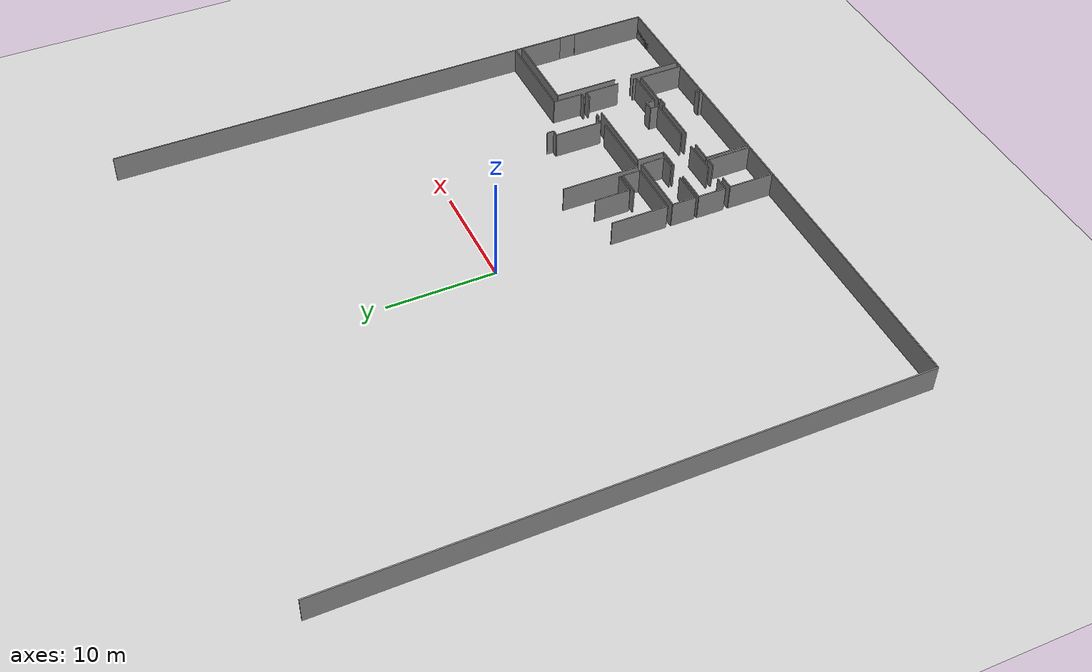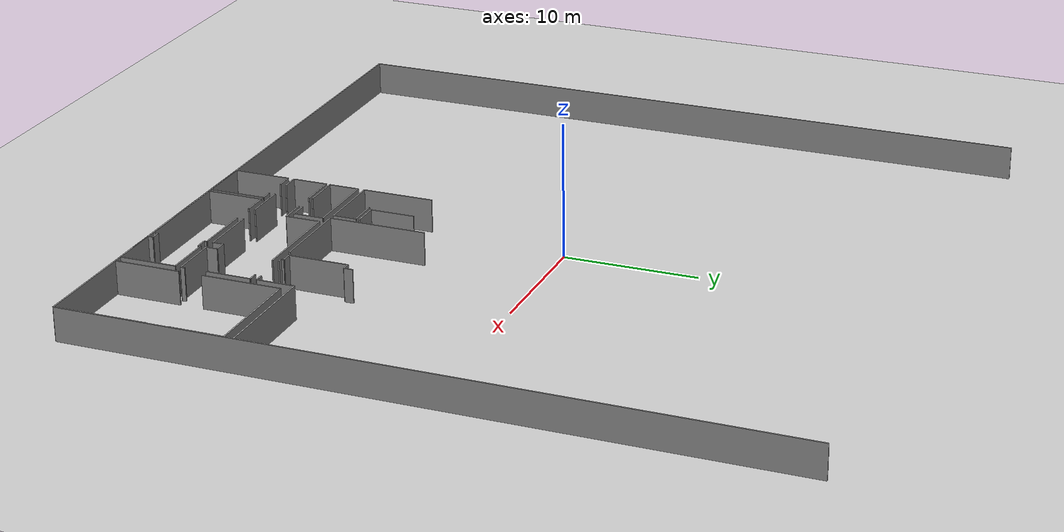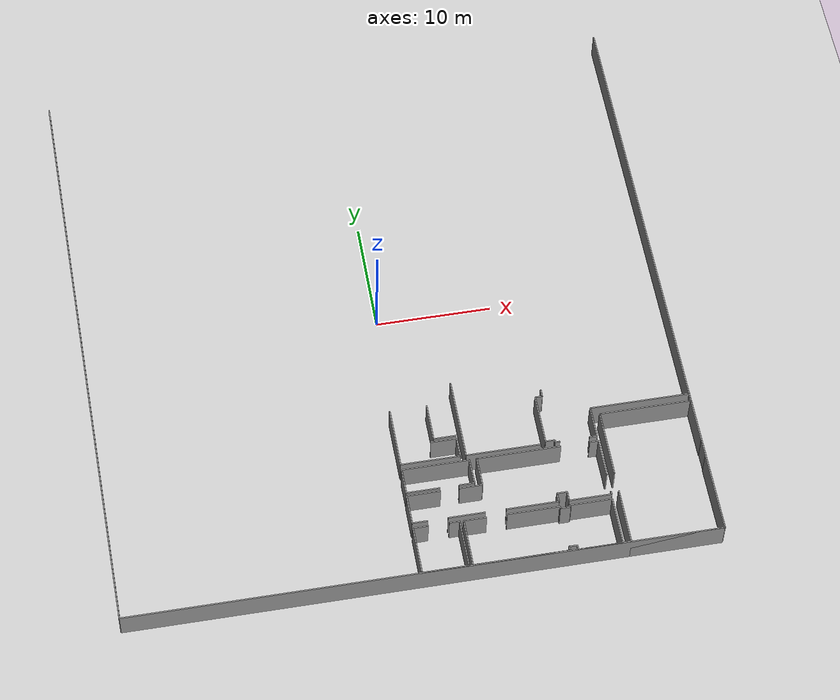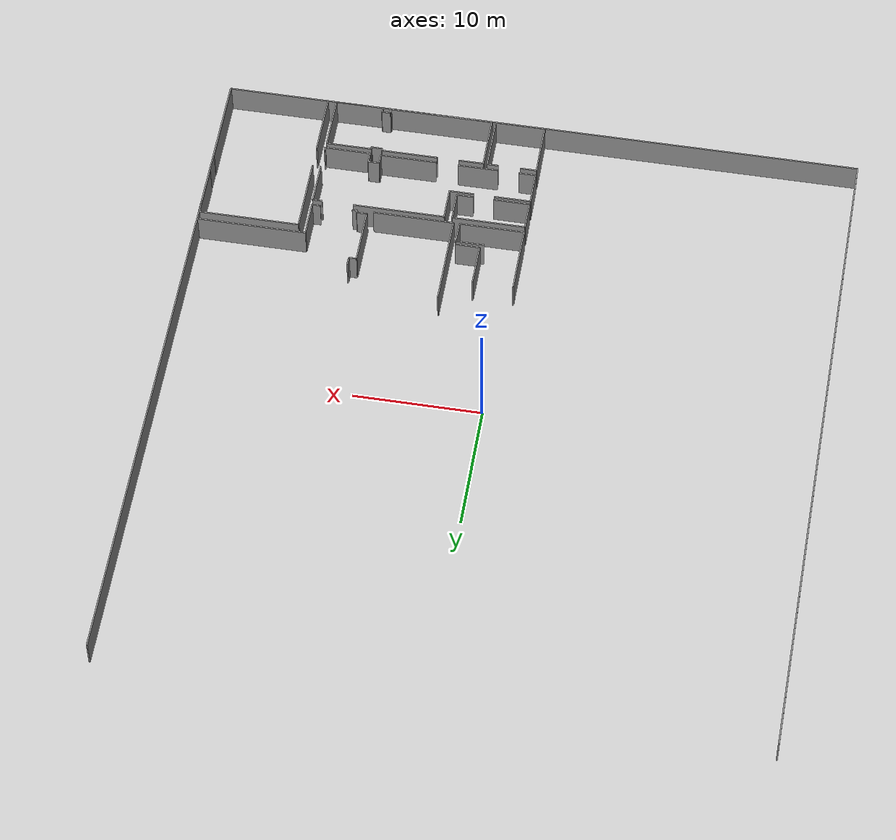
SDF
<sdf version="1.6">
 <world name="default">
  <model name="ground_plane">
   <static>1</static>
   <link name="link">
    <collision name="collision">
     <geometry><plane><normal>0 0 1</normal><size>100 100</size></plane></geometry>
     <surface><friction><ode><mu>100</mu><mu2>50</mu2></ode></friction></surface>
    </collision>
    <visual name="visual">
     <cast_shadows>0</cast_shadows>
     <geometry><plane><normal>0 0 1</normal><size>100 100</size></plane></geometry>
     <material>
      <script><uri>file://media/materials/scripts/gazebo.material</uri><name>Gazebo/Grey</name></script>
     </material>
    </visual>
   </link>
  </model>
  <model name="50025630">
   <static>1</static>
   <link name="Wall_31">
    <collision name="Wall_31_Collision">
     <geometry><box><size>8.59820799228 0.1 2.5</size></box></geometry>
     <pose>4.29910399614 0 1.25 0 0 0</pose>
    </collision>
    <visual name="Wall_31_Visual">
     <pose>4.29910399614 0 1.25 0 0 0</pose>
     <geometry><box><size>8.59820799228 0.1 2.5</size></box></geometry>
     <material>
      <script><uri>file://media/materials/scripts/gazebo.material</uri><name>Gazebo/Grey</name></script>
      <ambient>1 1 1 1</ambient>
     </material>
    </visual>
    <pose>50.4575271309 -39.2135994463 0 0 0 3.14159265359</pose>
   </link>
   <link name="Wall_32">
    <collision name="Wall_32_Collision">
     <geometry><box><size>2.80104396198 0.1 2.5</size></box></geometry>
     <pose>1.40052198099 0 1.25 0 0 0</pose>
    </collision>
    <visual name="Wall_32_Visual">
     <pose>1.40052198099 0 1.25 0 0 0</pose>
     <geometry><box><size>2.80104396198 0.1 2.5</size></box></geometry>
     <material>
      <script><uri>file://media/materials/scripts/gazebo.material</uri><name>Gazebo/Grey</name></script>
      <ambient>1 1 1 1</ambient>
     </material>
    </visual>
    <pose>41.8593191387 -39.2135994463 0 0 0 -1.57079632679</pose>
   </link>
   <link name="Wall_33">
    <collision name="Wall_33_Collision">
     <geometry><box><size>0.660794909733 0.1 2.5</size></box></geometry>
     <pose>0.330397454866 0 1.25 0 0 0</pose>
    </collision>
    <visual name="Wall_33_Visual">
     <pose>0.330397454866 0 1.25 0 0 0</pose>
     <geometry><box><size>0.660794909733 0.1 2.5</size></box></geometry>
     <material>
      <script><uri>file://media/materials/scripts/gazebo.material</uri><name>Gazebo/Grey</name></script>
      <ambient>1 1 1 1</ambient>
     </material>
    </visual>
    <pose>41.8593191387 -42.0146434082 0 0 0 3.14159265359</pose>
   </link>
   <link name="Wall_34">
    <collision name="Wall_34_Collision">
     <geometry><box><size>0.40082043727 0.1 2.5</size></box></geometry>
     <pose>0.200410218635 0 1.25 0 0 0</pose>
    </collision>
    <visual name="Wall_34_Visual">
     <pose>0.200410218635 0 1.25 0 0 0</pose>
     <geometry><box><size>0.40082043727 0.1 2.5</size></box></geometry>
     <material>
      <script><uri>file://media/materials/scripts/gazebo.material</uri><name>Gazebo/Grey</name></script>
      <ambient>1 1 1 1</ambient>
     </material>
    </visual>
    <pose>38.6610108143 -42.0146434082 0 0 0 3.14159265359</pose>
   </link>
   <link name="Wall_35">
    <collision name="Wall_35_Collision">
     <geometry><box><size>0.204093296164 0.1 2.5</size></box></geometry>
     <pose>0.102046648082 0 1.25 0 0 0</pose>
    </collision>
    <visual name="Wall_35_Visual">
     <pose>0.102046648082 0 1.25 0 0 0</pose>
     <geometry><box><size>0.204093296164 0.1 2.5</size></box></geometry>
     <material>
      <script><uri>file://media/materials/scripts/gazebo.material</uri><name>Gazebo/Grey</name></script>
      <ambient>1 1 1 1</ambient>
     </material>
    </visual>
    <pose>38.260190377 -42.0146434082 0 0 0 1.57079632679</pose>
   </link>
   <link name="Wall_36">
    <collision name="Wall_36_Collision">
     <geometry><box><size>0.793385700769 0.1 2.5</size></box></geometry>
     <pose>0.396692850385 0 1.25 0 0 0</pose>
    </collision>
    <visual name="Wall_36_Visual">
     <pose>0.396692850385 0 1.25 0 0 0</pose>
     <geometry><box><size>0.793385700769 0.1 2.5</size></box></geometry>
     <material>
      <script><uri>file://media/materials/scripts/gazebo.material</uri><name>Gazebo/Grey</name></script>
      <ambient>1 1 1 1</ambient>
     </material>
    </visual>
    <pose>38.260190377 -41.8105501121 0 0 0 3.14159265359</pose>
   </link>
   <link name="Wall_37">
    <collision name="Wall_37_Collision">
     <geometry><box><size>4.43163128584 0.1 2.5</size></box></geometry>
     <pose>2.21581564292 0 1.25 0 0 0</pose>
    </collision>
    <visual name="Wall_37_Visual">
     <pose>2.21581564292 0 1.25 0 0 0</pose>
     <geometry><box><size>4.43163128584 0.1 2.5</size></box></geometry>
     <material>
      <script><uri>file://media/materials/scripts/gazebo.material</uri><name>Gazebo/Grey</name></script>
      <ambient>1 1 1 1</ambient>
     </material>
    </visual>
    <pose>37.4668046762 -41.8105501121 0 0 0 1.57079632679</pose>
   </link>
   <link name="Wall_38">
    <collision name="Wall_38_Collision">
     <geometry><box><size>0.608215802943 0.1 2.5</size></box></geometry>
     <pose>0.304107901471 0 1.25 0 0 0</pose>
    </collision>
    <visual name="Wall_38_Visual">
     <pose>0.304107901471 0 1.25 0 0 0</pose>
     <geometry><box><size>0.608215802943 0.1 2.5</size></box></geometry>
     <material>
      <script><uri>file://media/materials/scripts/gazebo.material</uri><name>Gazebo/Grey</name></script>
      <ambient>1 1 1 1</ambient>
     </material>
    </visual>
    <pose>37.4668046762 -37.3789188262 0 0 0 0.0</pose>
   </link>
   <link name="Wall_39">
    <collision name="Wall_39_Collision">
     <geometry><box><size>0.654063768042 0.1 2.5</size></box></geometry>
     <pose>0.327031884021 0 1.25 0 0 0</pose>
    </collision>
    <visual name="Wall_39_Visual">
     <pose>0.327031884021 0 1.25 0 0 0</pose>
     <geometry><box><size>0.654063768042 0.1 2.5</size></box></geometry>
     <material>
      <script><uri>file://media/materials/scripts/gazebo.material</uri><name>Gazebo/Grey</name></script>
      <ambient>1 1 1 1</ambient>
     </material>
    </visual>
    <pose>38.0750204792 -37.3789188262 0 0 0 1.57079632679</pose>
   </link>
   <link name="Wall_83">
    <collision name="Wall_83_Collision">
     <geometry><box><size>6.3774392451 0.1 2.5</size></box></geometry>
     <pose>3.18871962255 0 1.25 0 0 0</pose>
    </collision>
    <visual name="Wall_83_Visual">
     <pose>3.18871962255 0 1.25 0 0 0</pose>
     <geometry><box><size>6.3774392451 0.1 2.5</size></box></geometry>
     <material>
      <script><uri>file://media/materials/scripts/gazebo.material</uri><name>Gazebo/Grey</name></script>
      <ambient>1 1 1 1</ambient>
     </material>
    </visual>
    <pose>36.9894016269 -42.0253116328 0 0 0 3.14159265359</pose>
   </link>
   <link name="Wall_84">
    <collision name="Wall_84_Collision">
     <geometry><box><size>7.25439270497 0.1 2.5</size></box></geometry>
     <pose>3.62719635248 0 1.25 0 0 0</pose>
    </collision>
    <visual name="Wall_84_Visual">
     <pose>3.62719635248 0 1.25 0 0 0</pose>
     <geometry><box><size>7.25439270497 0.1 2.5</size></box></geometry>
     <material>
      <script><uri>file://media/materials/scripts/gazebo.material</uri><name>Gazebo/Grey</name></script>
      <ambient>1 1 1 1</ambient>
     </material>
    </visual>
    <pose>30.6119623818 -42.0253116328 0 0 0 1.57079632679</pose>
   </link>
   <link name="Wall_88">
    <collision name="Wall_88_Collision">
     <geometry><box><size>5.10677749767 0.1 2.5</size></box></geometry>
     <pose>2.55338874883 0 1.25 0 0 0</pose>
    </collision>
    <visual name="Wall_88_Visual">
     <pose>2.55338874883 0 1.25 0 0 0</pose>
     <geometry><box><size>5.10677749767 0.1 2.5</size></box></geometry>
     <material>
      <script><uri>file://media/materials/scripts/gazebo.material</uri><name>Gazebo/Grey</name></script>
      <ambient>1 1 1 1</ambient>
     </material>
    </visual>
    <pose>30.1302412416 -42.0101983147 0 0 0 3.14159265359</pose>
   </link>
   <link name="Wall_89">
    <collision name="Wall_89_Collision">
     <geometry><box><size>5.34236745683 0.1 2.5</size></box></geometry>
     <pose>2.67118372842 0 1.25 0 0 0</pose>
    </collision>
    <visual name="Wall_89_Visual">
     <pose>2.67118372842 0 1.25 0 0 0</pose>
     <geometry><box><size>5.34236745683 0.1 2.5</size></box></geometry>
     <material>
      <script><uri>file://media/materials/scripts/gazebo.material</uri><name>Gazebo/Grey</name></script>
      <ambient>1 1 1 1</ambient>
     </material>
    </visual>
    <pose>25.0234637439 -42.0101983147 0 0 0 1.57079632679</pose>
   </link>
   <link name="Wall_93">
    <collision name="Wall_93_Collision">
     <geometry><box><size>2.22762689155 0.1 2.5</size></box></geometry>
     <pose>1.11381344577 0 1.25 0 0 0</pose>
    </collision>
    <visual name="Wall_93_Visual">
     <pose>1.11381344577 0 1.25 0 0 0</pose>
     <geometry><box><size>2.22762689155 0.1 2.5</size></box></geometry>
     <material>
      <script><uri>file://media/materials/scripts/gazebo.material</uri><name>Gazebo/Grey</name></script>
      <ambient>1 1 1 1</ambient>
     </material>
    </visual>
    <pose>27.8981692565 -40.2762308147 0 0 0 0.0</pose>
   </link>
   <link name="Wall_94">
    <collision name="Wall_94_Collision">
     <geometry><box><size>1.73397319759 0.1 2.5</size></box></geometry>
     <pose>0.866986598796 0 1.25 0 0 0</pose>
    </collision>
    <visual name="Wall_94_Visual">
     <pose>0.866986598796 0 1.25 0 0 0</pose>
     <geometry><box><size>1.73397319759 0.1 2.5</size></box></geometry>
     <material>
      <script><uri>file://media/materials/scripts/gazebo.material</uri><name>Gazebo/Grey</name></script>
      <ambient>1 1 1 1</ambient>
     </material>
    </visual>
    <pose>30.125796148 -40.2762308147 0 0 0 -1.56823279326</pose>
   </link>
   <link name="Wall_95">
    <collision name="Wall_95_Collision">
     <geometry><box><size>1.93729878014 0.1 2.5</size></box></geometry>
     <pose>0.96864939007 0 1.25 0 0 0</pose>
    </collision>
    <visual name="Wall_95_Visual">
     <pose>0.96864939007 0 1.25 0 0 0</pose>
     <geometry><box><size>1.93729878014 0.1 2.5</size></box></geometry>
     <material>
      <script><uri>file://media/materials/scripts/gazebo.material</uri><name>Gazebo/Grey</name></script>
      <ambient>1 1 1 1</ambient>
     </material>
    </visual>
    <pose>30.1433225169 -39.9900937915 0 0 0 3.14159265359</pose>
   </link>
   <link name="Wall_96">
    <collision name="Wall_96_Collision">
     <geometry><box><size>3.32594601116 0.1 2.5</size></box></geometry>
     <pose>1.66297300558 0 1.25 0 0 0</pose>
    </collision>
    <visual name="Wall_96_Visual">
     <pose>1.66297300558 0 1.25 0 0 0</pose>
     <geometry><box><size>3.32594601116 0.1 2.5</size></box></geometry>
     <material>
      <script><uri>file://media/materials/scripts/gazebo.material</uri><name>Gazebo/Grey</name></script>
      <ambient>1 1 1 1</ambient>
     </material>
    </visual>
    <pose>28.2060237368 -39.9900937915 0 0 0 1.57079632679</pose>
   </link>
   <link name="Wall_100">
    <collision name="Wall_100_Collision">
     <geometry><box><size>3.62071921614 0.1 2.5</size></box></geometry>
     <pose>1.81035960807 0 1.25 0 0 0</pose>
    </collision>
    <visual name="Wall_100_Visual">
     <pose>1.81035960807 0 1.25 0 0 0</pose>
     <geometry><box><size>3.62071921614 0.1 2.5</size></box></geometry>
     <material>
      <script><uri>file://media/materials/scripts/gazebo.material</uri><name>Gazebo/Grey</name></script>
      <ambient>1 1 1 1</ambient>
     </material>
    </visual>
    <pose>41.8975469434 -47.7481790992 0 0 0 3.14159265359</pose>
   </link>
   <link name="Wall_101">
    <collision name="Wall_101_Collision">
     <geometry><box><size>0.835423585666 0.1 2.5</size></box></geometry>
     <pose>0.417711792833 0 1.25 0 0 0</pose>
    </collision>
    <visual name="Wall_101_Visual">
     <pose>0.417711792833 0 1.25 0 0 0</pose>
     <geometry><box><size>0.835423585666 0.1 2.5</size></box></geometry>
     <material>
      <script><uri>file://media/materials/scripts/gazebo.material</uri><name>Gazebo/Grey</name></script>
      <ambient>1 1 1 1</ambient>
     </material>
    </visual>
    <pose>38.2768277272 -47.7481790992 0 0 0 1.57079632679</pose>
   </link>
   <link name="Wall_102">
    <collision name="Wall_102_Collision">
     <geometry><box><size>0.868444280752 0.1 2.5</size></box></geometry>
     <pose>0.434222140376 0 1.25 0 0 0</pose>
    </collision>
    <visual name="Wall_102_Visual">
     <pose>0.434222140376 0 1.25 0 0 0</pose>
     <geometry><box><size>0.868444280752 0.1 2.5</size></box></geometry>
     <material>
      <script><uri>file://media/materials/scripts/gazebo.material</uri><name>Gazebo/Grey</name></script>
      <ambient>1 1 1 1</ambient>
     </material>
    </visual>
    <pose>38.2768277272 -46.9127555135 0 0 0 3.14159265359</pose>
   </link>
   <link name="Wall_103">
    <collision name="Wall_103_Collision">
     <geometry><box><size>0.785003524324 0.1 2.5</size></box></geometry>
     <pose>0.392501762162 0 1.25 0 0 0</pose>
    </collision>
    <visual name="Wall_103_Visual">
     <pose>0.392501762162 0 1.25 0 0 0</pose>
     <geometry><box><size>0.785003524324 0.1 2.5</size></box></geometry>
     <material>
      <script><uri>file://media/materials/scripts/gazebo.material</uri><name>Gazebo/Grey</name></script>
      <ambient>1 1 1 1</ambient>
     </material>
    </visual>
    <pose>37.4083834465 -46.9127555135 0 0 0 -1.57079632679</pose>
   </link>
   <link name="Wall_104">
    <collision name="Wall_104_Collision">
     <geometry><box><size>4.45919086597 0.1 2.5</size></box></geometry>
     <pose>2.22959543298 0 1.25 0 0 0</pose>
    </collision>
    <visual name="Wall_104_Visual">
     <pose>2.22959543298 0 1.25 0 0 0</pose>
     <geometry><box><size>4.45919086597 0.1 2.5</size></box></geometry>
     <material>
      <script><uri>file://media/materials/scripts/gazebo.material</uri><name>Gazebo/Grey</name></script>
      <ambient>1 1 1 1</ambient>
     </material>
    </visual>
    <pose>37.4083834465 -47.6977590378 0 0 0 3.14159265359</pose>
   </link>
   <link name="Wall_105">
    <collision name="Wall_105_Collision">
     <geometry><box><size>3.15703245553 0.1 2.5</size></box></geometry>
     <pose>1.57851622777 0 1.25 0 0 0</pose>
    </collision>
    <visual name="Wall_105_Visual">
     <pose>1.57851622777 0 1.25 0 0 0</pose>
     <geometry><box><size>3.15703245553 0.1 2.5</size></box></geometry>
     <material>
      <script><uri>file://media/materials/scripts/gazebo.material</uri><name>Gazebo/Grey</name></script>
      <ambient>1 1 1 1</ambient>
     </material>
    </visual>
    <pose>31.1833474095 -47.6977590378 0 0 0 3.14159265359</pose>
   </link>
   <link name="Wall_106">
    <collision name="Wall_106_Collision">
     <geometry><box><size>1.31333464569 0.1 2.5</size></box></geometry>
     <pose>0.656667322847 0 1.25 0 0 0</pose>
    </collision>
    <visual name="Wall_106_Visual">
     <pose>0.656667322847 0 1.25 0 0 0</pose>
     <geometry><box><size>1.31333464569 0.1 2.5</size></box></geometry>
     <material>
      <script><uri>file://media/materials/scripts/gazebo.material</uri><name>Gazebo/Grey</name></script>
      <ambient>1 1 1 1</ambient>
     </material>
    </visual>
    <pose>26.3182559993 -47.6977590378 0 0 0 3.14159265359</pose>
   </link>
   <link name="Wall_107">
    <collision name="Wall_107_Collision">
     <geometry><box><size>2.63340043308 0.1 2.5</size></box></geometry>
     <pose>1.31670021654 0 1.25 0 0 0</pose>
    </collision>
    <visual name="Wall_107_Visual">
     <pose>1.31670021654 0 1.25 0 0 0</pose>
     <geometry><box><size>2.63340043308 0.1 2.5</size></box></geometry>
     <material>
      <script><uri>file://media/materials/scripts/gazebo.material</uri><name>Gazebo/Grey</name></script>
      <ambient>1 1 1 1</ambient>
     </material>
    </visual>
    <pose>25.0049213536 -47.6977590378 0 0 0 1.57079632679</pose>
   </link>
   <link name="Wall_108">
    <collision name="Wall_108_Collision">
     <geometry><box><size>2.87610254196 0.1 2.5</size></box></geometry>
     <pose>1.43805127098 0 1.25 0 0 0</pose>
    </collision>
    <visual name="Wall_108_Visual">
     <pose>1.43805127098 0 1.25 0 0 0</pose>
     <geometry><box><size>2.87610254196 0.1 2.5</size></box></geometry>
     <material>
      <script><uri>file://media/materials/scripts/gazebo.material</uri><name>Gazebo/Grey</name></script>
      <ambient>1 1 1 1</ambient>
     </material>
    </visual>
    <pose>25.0049213536 -45.0643586047 0 0 0 0.0</pose>
   </link>
   <link name="Wall_109">
    <collision name="Wall_109_Collision">
     <geometry><box><size>1.95406313303 0.1 2.5</size></box></geometry>
     <pose>0.977031566514 0 1.25 0 0 0</pose>
    </collision>
    <visual name="Wall_109_Visual">
     <pose>0.977031566514 0 1.25 0 0 0</pose>
     <geometry><box><size>1.95406313303 0.1 2.5</size></box></geometry>
     <material>
      <script><uri>file://media/materials/scripts/gazebo.material</uri><name>Gazebo/Grey</name></script>
      <ambient>1 1 1 1</ambient>
     </material>
    </visual>
    <pose>29.4836706313 -45.0643586047 0 0 0 0.0</pose>
   </link>
   <link name="Wall_110">
    <collision name="Wall_110_Collision">
     <geometry><box><size>2.57675724074 0.1 2.5</size></box></geometry>
     <pose>1.28837862037 0 1.25 0 0 0</pose>
    </collision>
    <visual name="Wall_110_Visual">
     <pose>1.28837862037 0 1.25 0 0 0</pose>
     <geometry><box><size>2.57675724074 0.1 2.5</size></box></geometry>
     <material>
      <script><uri>file://media/materials/scripts/gazebo.material</uri><name>Gazebo/Grey</name></script>
      <ambient>1 1 1 1</ambient>
     </material>
    </visual>
    <pose>31.4377337643 -45.0643586047 0 0 0 1.57079632679</pose>
   </link>
   <link name="Wall_111">
    <collision name="Wall_111_Collision">
     <geometry><box><size>7.21857795107 0.1 2.5</size></box></geometry>
     <pose>3.60928897553 0 1.25 0 0 0</pose>
    </collision>
    <visual name="Wall_111_Visual">
     <pose>3.60928897553 0 1.25 0 0 0</pose>
     <geometry><box><size>7.21857795107 0.1 2.5</size></box></geometry>
     <material>
      <script><uri>file://media/materials/scripts/gazebo.material</uri><name>Gazebo/Grey</name></script>
      <ambient>1 1 1 1</ambient>
     </material>
    </visual>
    <pose>31.4377337643 -42.487601364 0 0 0 0.0</pose>
   </link>
   <link name="Wall_112">
    <collision name="Wall_112_Collision">
     <geometry><box><size>0.744870679528 0.1 2.5</size></box></geometry>
     <pose>0.372435339764 0 1.25 0 0 0</pose>
    </collision>
    <visual name="Wall_112_Visual">
     <pose>0.372435339764 0 1.25 0 0 0</pose>
     <geometry><box><size>0.744870679528 0.1 2.5</size></box></geometry>
     <material>
      <script><uri>file://media/materials/scripts/gazebo.material</uri><name>Gazebo/Grey</name></script>
      <ambient>1 1 1 1</ambient>
     </material>
    </visual>
    <pose>41.137435943 -42.487601364 0 0 0 0.0</pose>
   </link>
   <link name="Wall_113">
    <collision name="Wall_113_Collision">
     <geometry><box><size>3.33966229989 0.1 2.5</size></box></geometry>
     <pose>1.66983114995 0 1.25 0 0 0</pose>
    </collision>
    <visual name="Wall_113_Visual">
     <pose>1.66983114995 0 1.25 0 0 0</pose>
     <geometry><box><size>3.33966229989 0.1 2.5</size></box></geometry>
     <material>
      <script><uri>file://media/materials/scripts/gazebo.material</uri><name>Gazebo/Grey</name></script>
      <ambient>1 1 1 1</ambient>
     </material>
    </visual>
    <pose>41.8823066226 -42.487601364 0 0 0 -1.57079632679</pose>
   </link>
   <link name="Wall_114">
    <collision name="Wall_114_Collision">
     <geometry><box><size>0.301381919908 0.1 2.5</size></box></geometry>
     <pose>0.150690959954 0 1.25 0 0 0</pose>
    </collision>
    <visual name="Wall_114_Visual">
     <pose>0.150690959954 0 1.25 0 0 0</pose>
     <geometry><box><size>0.301381919908 0.1 2.5</size></box></geometry>
     <material>
      <script><uri>file://media/materials/scripts/gazebo.material</uri><name>Gazebo/Grey</name></script>
      <ambient>1 1 1 1</ambient>
     </material>
    </visual>
    <pose>41.8823066226 -47.4471827632 0 0 0 -1.52020661803</pose>
   </link>
   <link name="Wall_115">
    <collision name="Wall_115_Collision">
     <geometry><box><size>1.32501889165 0.1 2.5</size></box></geometry>
     <pose>0.662509445824 0 1.25 0 0 0</pose>
    </collision>
    <visual name="Wall_115_Visual">
     <pose>0.662509445824 0 1.25 0 0 0</pose>
     <geometry><box><size>1.32501889165 0.1 2.5</size></box></geometry>
     <material>
      <script><uri>file://media/materials/scripts/gazebo.material</uri><name>Gazebo/Grey</name></script>
      <ambient>1 1 1 1</ambient>
     </material>
    </visual>
    <pose>30.8257078812 -44.7763165415 0 0 0 3.14159265359</pose>
   </link>
   <link name="Wall_116">
    <collision name="Wall_116_Collision">
     <geometry><box><size>2.87127644037 0.1 2.5</size></box></geometry>
     <pose>1.43563822018 0 1.25 0 0 0</pose>
    </collision>
    <visual name="Wall_116_Visual">
     <pose>1.43563822018 0 1.25 0 0 0</pose>
     <geometry><box><size>2.87127644037 0.1 2.5</size></box></geometry>
     <material>
      <script><uri>file://media/materials/scripts/gazebo.material</uri><name>Gazebo/Grey</name></script>
      <ambient>1 1 1 1</ambient>
     </material>
    </visual>
    <pose>27.8990582752 -44.7763165415 0 0 0 3.14159265359</pose>
   </link>
   <link name="Wall_117">
    <collision name="Wall_117_Collision">
     <geometry><box><size>2.26344164545 0.1 2.5</size></box></geometry>
     <pose>1.13172082272 0 1.25 0 0 0</pose>
    </collision>
    <visual name="Wall_117_Visual">
     <pose>1.13172082272 0 1.25 0 0 0</pose>
     <geometry><box><size>2.26344164545 0.1 2.5</size></box></geometry>
     <material>
      <script><uri>file://media/materials/scripts/gazebo.material</uri><name>Gazebo/Grey</name></script>
      <ambient>1 1 1 1</ambient>
     </material>
    </visual>
    <pose>25.0277818348 -44.7763165415 0 0 0 1.57079632679</pose>
   </link>
   <link name="Wall_118">
    <collision name="Wall_118_Collision">
     <geometry><box><size>5.76693739403 0.1 2.5</size></box></geometry>
     <pose>2.88346869702 0 1.25 0 0 0</pose>
    </collision>
    <visual name="Wall_118_Visual">
     <pose>2.88346869702 0 1.25 0 0 0</pose>
     <geometry><box><size>5.76693739403 0.1 2.5</size></box></geometry>
     <material>
      <script><uri>file://media/materials/scripts/gazebo.material</uri><name>Gazebo/Grey</name></script>
      <ambient>1 1 1 1</ambient>
     </material>
    </visual>
    <pose>25.0277818348 -42.512874896 0 0 0 0.0</pose>
   </link>
   <link name="Wall_119">
    <collision name="Wall_119_Collision">
     <geometry><box><size>2.26365376746 0.1 2.5</size></box></geometry>
     <pose>1.13182688373 0 1.25 0 0 0</pose>
    </collision>
    <visual name="Wall_119_Visual">
     <pose>1.13182688373 0 1.25 0 0 0</pose>
     <geometry><box><size>2.26365376746 0.1 2.5</size></box></geometry>
     <material>
      <script><uri>file://media/materials/scripts/gazebo.material</uri><name>Gazebo/Grey</name></script>
      <ambient>1 1 1 1</ambient>
     </material>
    </visual>
    <pose>30.7947192288 -42.512874896 0 0 0 -1.55710623834</pose>
   </link>
   <link name="Wall_120">
    <collision name="Wall_120_Collision">
     <geometry><box><size>3.94152796916 0.1 2.5</size></box></geometry>
     <pose>1.97076398458 0 1.25 0 0 0</pose>
    </collision>
    <visual name="Wall_120_Visual">
     <pose>1.97076398458 0 1.25 0 0 0</pose>
     <geometry><box><size>3.94152796916 0.1 2.5</size></box></geometry>
     <material>
      <script><uri>file://media/materials/scripts/gazebo.material</uri><name>Gazebo/Grey</name></script>
      <ambient>1 1 1 1</ambient>
     </material>
    </visual>
    <pose>28.9408612051 -52.4075261784 0 0 0 3.14159265359</pose>
   </link>
   <link name="Wall_121">
    <collision name="Wall_121_Collision">
     <geometry><box><size>4.23528515275 0.1 2.5</size></box></geometry>
     <pose>2.11764257638 0 1.25 0 0 0</pose>
    </collision>
    <visual name="Wall_121_Visual">
     <pose>2.11764257638 0 1.25 0 0 0</pose>
     <geometry><box><size>4.23528515275 0.1 2.5</size></box></geometry>
     <material>
      <script><uri>file://media/materials/scripts/gazebo.material</uri><name>Gazebo/Grey</name></script>
      <ambient>1 1 1 1</ambient>
     </material>
    </visual>
    <pose>24.999333236 -52.4075261784 0 0 0 1.57079632679</pose>
   </link>
   <link name="Wall_122">
    <collision name="Wall_122_Collision">
     <geometry><box><size>1.28412403081 0.1 2.5</size></box></geometry>
     <pose>0.642062015405 0 1.25 0 0 0</pose>
    </collision>
    <visual name="Wall_122_Visual">
     <pose>0.642062015405 0 1.25 0 0 0</pose>
     <geometry><box><size>1.28412403081 0.1 2.5</size></box></geometry>
     <material>
      <script><uri>file://media/materials/scripts/gazebo.material</uri><name>Gazebo/Grey</name></script>
      <ambient>1 1 1 1</ambient>
     </material>
    </visual>
    <pose>24.999333236 -48.1722410257 0 0 0 0.0</pose>
   </link>
   <link name="Wall_123">
    <collision name="Wall_123_Collision">
     <geometry><box><size>0.885208633642 0.1 2.5</size></box></geometry>
     <pose>0.442604316821 0 1.25 0 0 0</pose>
    </collision>
    <visual name="Wall_123_Visual">
     <pose>0.442604316821 0 1.25 0 0 0</pose>
     <geometry><box><size>0.885208633642 0.1 2.5</size></box></geometry>
     <material>
      <script><uri>file://media/materials/scripts/gazebo.material</uri><name>Gazebo/Grey</name></script>
      <ambient>1 1 1 1</ambient>
     </material>
    </visual>
    <pose>28.047270395 -48.1722410257 0 0 0 0.0</pose>
   </link>
   <link name="Wall_124">
    <collision name="Wall_124_Collision">
     <geometry><box><size>4.23529344745 0.1 2.5</size></box></geometry>
     <pose>2.11764672372 0 1.25 0 0 0</pose>
    </collision>
    <visual name="Wall_124_Visual">
     <pose>2.11764672372 0 1.25 0 0 0</pose>
     <geometry><box><size>4.23529344745 0.1 2.5</size></box></geometry>
     <material>
      <script><uri>file://media/materials/scripts/gazebo.material</uri><name>Gazebo/Grey</name></script>
      <ambient>1 1 1 1</ambient>
     </material>
    </visual>
    <pose>28.9324790287 -48.1722410257 0 0 0 -1.5688172002</pose>
   </link>
   <link name="Wall_125">
    <collision name="Wall_125_Collision">
     <geometry><box><size>3.77020136274 0.1 2.5</size></box></geometry>
     <pose>1.88510068137 0 1.25 0 0 0</pose>
    </collision>
    <visual name="Wall_125_Visual">
     <pose>1.88510068137 0 1.25 0 0 0</pose>
     <geometry><box><size>3.77020136274 0.1 2.5</size></box></geometry>
     <material>
      <script><uri>file://media/materials/scripts/gazebo.material</uri><name>Gazebo/Grey</name></script>
      <ambient>1 1 1 1</ambient>
     </material>
    </visual>
    <pose>41.8500479435 -52.4258145634 0 0 0 3.14159265359</pose>
   </link>
   <link name="Wall_126">
    <collision name="Wall_126_Collision">
     <geometry><box><size>0.398661391822 0.1 2.5</size></box></geometry>
     <pose>0.199330695911 0 1.25 0 0 0</pose>
    </collision>
    <visual name="Wall_126_Visual">
     <pose>0.199330695911 0 1.25 0 0 0</pose>
     <geometry><box><size>0.398661391822 0.1 2.5</size></box></geometry>
     <material>
      <script><uri>file://media/materials/scripts/gazebo.material</uri><name>Gazebo/Grey</name></script>
      <ambient>1 1 1 1</ambient>
     </material>
    </visual>
    <pose>38.0798465808 -52.4258145634 0 0 0 1.57079632679</pose>
   </link>
   <link name="Wall_127">
    <collision name="Wall_127_Collision">
     <geometry><box><size>0.678067273316 0.1 2.5</size></box></geometry>
     <pose>0.339033636658 0 1.25 0 0 0</pose>
    </collision>
    <visual name="Wall_127_Visual">
     <pose>0.339033636658 0 1.25 0 0 0</pose>
     <geometry><box><size>0.678067273316 0.1 2.5</size></box></geometry>
     <material>
      <script><uri>file://media/materials/scripts/gazebo.material</uri><name>Gazebo/Grey</name></script>
      <ambient>1 1 1 1</ambient>
     </material>
    </visual>
    <pose>38.0798465808 -52.0271531716 0 0 0 3.14159265359</pose>
   </link>
   <link name="Wall_128">
    <collision name="Wall_128_Collision">
     <geometry><box><size>0.372371838427 0.1 2.5</size></box></geometry>
     <pose>0.186185919214 0 1.25 0 0 0</pose>
    </collision>
    <visual name="Wall_128_Visual">
     <pose>0.186185919214 0 1.25 0 0 0</pose>
     <geometry><box><size>0.372371838427 0.1 2.5</size></box></geometry>
     <material>
      <script><uri>file://media/materials/scripts/gazebo.material</uri><name>Gazebo/Grey</name></script>
      <ambient>1 1 1 1</ambient>
     </material>
    </visual>
    <pose>37.4017793075 -52.0271531716 0 0 0 -1.57079632679</pose>
   </link>
   <link name="Wall_129">
    <collision name="Wall_129_Collision">
     <geometry><box><size>8.14518945624 0.1 2.5</size></box></geometry>
     <pose>4.07259472812 0 1.25 0 0 0</pose>
    </collision>
    <visual name="Wall_129_Visual">
     <pose>4.07259472812 0 1.25 0 0 0</pose>
     <geometry><box><size>8.14518945624 0.1 2.5</size></box></geometry>
     <material>
      <script><uri>file://media/materials/scripts/gazebo.material</uri><name>Gazebo/Grey</name></script>
      <ambient>1 1 1 1</ambient>
     </material>
    </visual>
    <pose>37.4017793075 -52.39952501 0 0 0 3.14159265359</pose>
   </link>
   <link name="Wall_130">
    <collision name="Wall_130_Collision">
     <geometry><box><size>4.22067984531 0.1 2.5</size></box></geometry>
     <pose>2.11033992266 0 1.25 0 0 0</pose>
    </collision>
    <visual name="Wall_130_Visual">
     <pose>2.11033992266 0 1.25 0 0 0</pose>
     <geometry><box><size>4.22067984531 0.1 2.5</size></box></geometry>
     <material>
      <script><uri>file://media/materials/scripts/gazebo.material</uri><name>Gazebo/Grey</name></script>
      <ambient>1 1 1 1</ambient>
     </material>
    </visual>
    <pose>29.2565898512 -52.39952501 0 0 0 1.57079632679</pose>
   </link>
   <link name="Wall_131">
    <collision name="Wall_131_Collision">
     <geometry><box><size>1.94796700471 0.1 2.5</size></box></geometry>
     <pose>0.973983502353 0 1.25 0 0 0</pose>
    </collision>
    <visual name="Wall_131_Visual">
     <pose>0.973983502353 0 1.25 0 0 0</pose>
     <geometry><box><size>1.94796700471 0.1 2.5</size></box></geometry>
     <material>
      <script><uri>file://media/materials/scripts/gazebo.material</uri><name>Gazebo/Grey</name></script>
      <ambient>1 1 1 1</ambient>
     </material>
    </visual>
    <pose>29.2565898512 -48.1788451647 0 0 0 0.0</pose>
   </link>
   <link name="Wall_132">
    <collision name="Wall_132_Collision">
     <geometry><box><size>4.4704941039 0.1 2.5</size></box></geometry>
     <pose>2.23524705195 0 1.25 0 0 0</pose>
    </collision>
    <visual name="Wall_132_Visual">
     <pose>2.23524705195 0 1.25 0 0 0</pose>
     <geometry><box><size>4.4704941039 0.1 2.5</size></box></geometry>
     <material>
      <script><uri>file://media/materials/scripts/gazebo.material</uri><name>Gazebo/Grey</name></script>
      <ambient>1 1 1 1</ambient>
     </material>
    </visual>
    <pose>32.9356032944 -48.1788451647 0 0 0 0.0</pose>
   </link>
   <link name="Wall_133">
    <collision name="Wall_133_Collision">
     <geometry><box><size>0.198632181207 0.1 2.5</size></box></geometry>
     <pose>0.0993160906037 0 1.25 0 0 0</pose>
    </collision>
    <visual name="Wall_133_Visual">
     <pose>0.0993160906037 0 1.25 0 0 0</pose>
     <geometry><box><size>0.198632181207 0.1 2.5</size></box></geometry>
     <material>
      <script><uri>file://media/materials/scripts/gazebo.material</uri><name>Gazebo/Grey</name></script>
      <ambient>1 1 1 1</ambient>
     </material>
    </visual>
    <pose>37.4060973984 -48.1788451647 0 0 0 -1.57079632679</pose>
   </link>
   <link name="Wall_134">
    <collision name="Wall_134_Collision">
     <geometry><box><size>0.86501520857 0.1 2.5</size></box></geometry>
     <pose>0.432507604285 0 1.25 0 0 0</pose>
    </collision>
    <visual name="Wall_134_Visual">
     <pose>0.432507604285 0 1.25 0 0 0</pose>
     <geometry><box><size>0.86501520857 0.1 2.5</size></box></geometry>
     <material>
      <script><uri>file://media/materials/scripts/gazebo.material</uri><name>Gazebo/Grey</name></script>
      <ambient>1 1 1 1</ambient>
     </material>
    </visual>
    <pose>37.4060973984 -48.3774773459 0 0 0 0.0</pose>
   </link>
   <link name="Wall_135">
    <collision name="Wall_135_Collision">
     <geometry><box><size>0.183137855052 0.1 2.5</size></box></geometry>
     <pose>0.0915689275259 0 1.25 0 0 0</pose>
    </collision>
    <visual name="Wall_135_Visual">
     <pose>0.0915689275259 0 1.25 0 0 0</pose>
     <geometry><box><size>0.183137855052 0.1 2.5</size></box></geometry>
     <material>
      <script><uri>file://media/materials/scripts/gazebo.material</uri><name>Gazebo/Grey</name></script>
      <ambient>1 1 1 1</ambient>
     </material>
    </visual>
    <pose>38.2711126069 -48.3774773459 0 0 0 1.57079632679</pose>
   </link>
   <link name="Wall_136">
    <collision name="Wall_136_Collision">
     <geometry><box><size>3.57398223233 0.1 2.5</size></box></geometry>
     <pose>1.78699111616 0 1.25 0 0 0</pose>
    </collision>
    <visual name="Wall_136_Visual">
     <pose>1.78699111616 0 1.25 0 0 0</pose>
     <geometry><box><size>3.57398223233 0.1 2.5</size></box></geometry>
     <material>
      <script><uri>file://media/materials/scripts/gazebo.material</uri><name>Gazebo/Grey</name></script>
      <ambient>1 1 1 1</ambient>
     </material>
    </visual>
    <pose>38.2711126069 -48.1943394908 0 0 0 0.0</pose>
   </link>
   <link name="Wall_137">
    <collision name="Wall_137_Collision">
     <geometry><box><size>4.23147797145 0.1 2.5</size></box></geometry>
     <pose>2.11573898572 0 1.25 0 0 0</pose>
    </collision>
    <visual name="Wall_137_Visual">
     <pose>2.11573898572 0 1.25 0 0 0</pose>
     <geometry><box><size>4.23147797145 0.1 2.5</size></box></geometry>
     <material>
      <script><uri>file://media/materials/scripts/gazebo.material</uri><name>Gazebo/Grey</name></script>
      <ambient>1 1 1 1</ambient>
     </material>
    </visual>
    <pose>41.8450948392 -48.1943394908 0 0 0 -1.56962578888</pose>
   </link>
   <link name="Wall_138">
    <collision name="Wall_138_Collision">
     <geometry><box><size>7.91442559866 0.1 2.5</size></box></geometry>
     <pose>3.95721279933 0 1.25 0 0 0</pose>
    </collision>
    <visual name="Wall_138_Visual">
     <pose>3.95721279933 0 1.25 0 0 0</pose>
     <geometry><box><size>7.91442559866 0.1 2.5</size></box></geometry>
     <material>
      <script><uri>file://media/materials/scripts/gazebo.material</uri><name>Gazebo/Grey</name></script>
      <ambient>1 1 1 1</ambient>
     </material>
    </visual>
    <pose>50.4562571042 -52.4274655982 0 0 0 3.14159265359</pose>
   </link>
   <link name="Wall_139">
    <collision name="Wall_139_Collision">
     <geometry><box><size>4.89417502238 0.1 2.5</size></box></geometry>
     <pose>2.44708751119 0 1.25 0 0 0</pose>
    </collision>
    <visual name="Wall_139_Visual">
     <pose>2.44708751119 0 1.25 0 0 0</pose>
     <geometry><box><size>4.89417502238 0.1 2.5</size></box></geometry>
     <material>
      <script><uri>file://media/materials/scripts/gazebo.material</uri><name>Gazebo/Grey</name></script>
      <ambient>1 1 1 1</ambient>
     </material>
    </visual>
    <pose>42.5418315056 -52.4274655982 0 0 0 1.57079632679</pose>
   </link>
   <link name="Wall_140">
    <collision name="Wall_140_Collision">
     <geometry><box><size>5.89965518774 0.1 2.5</size></box></geometry>
     <pose>2.94982759387 0 1.25 0 0 0</pose>
    </collision>
    <visual name="Wall_140_Visual">
     <pose>2.94982759387 0 1.25 0 0 0</pose>
     <geometry><box><size>5.89965518774 0.1 2.5</size></box></geometry>
     <material>
      <script><uri>file://media/materials/scripts/gazebo.material</uri><name>Gazebo/Grey</name></script>
      <ambient>1 1 1 1</ambient>
     </material>
    </visual>
    <pose>42.5418315056 -45.8066892308 0 0 0 1.57079632679</pose>
   </link>
   <link name="Wall_141">
    <collision name="Wall_141_Collision">
     <geometry><box><size>7.89537519765 0.1 2.5</size></box></geometry>
     <pose>3.94768759882 0 1.25 0 0 0</pose>
    </collision>
    <visual name="Wall_141_Visual">
     <pose>3.94768759882 0 1.25 0 0 0</pose>
     <geometry><box><size>7.89537519765 0.1 2.5</size></box></geometry>
     <material>
      <script><uri>file://media/materials/scripts/gazebo.material</uri><name>Gazebo/Grey</name></script>
      <ambient>1 1 1 1</ambient>
     </material>
    </visual>
    <pose>42.5418315056 -39.9070340431 0 0 0 0.0</pose>
   </link>
   <link name="Wall_142">
    <collision name="Wall_142_Collision">
     <geometry><box><size>4.00274325775 0.1 2.5</size></box></geometry>
     <pose>2.00137162887 0 1.25 0 0 0</pose>
    </collision>
    <visual name="Wall_142_Visual">
     <pose>2.00137162887 0 1.25 0 0 0</pose>
     <geometry><box><size>4.00274325775 0.1 2.5</size></box></geometry>
     <material>
      <script><uri>file://media/materials/scripts/gazebo.material</uri><name>Gazebo/Grey</name></script>
      <ambient>1 1 1 1</ambient>
     </material>
    </visual>
    <pose>50.4372067032 -39.9070340431 0 0 0 -1.57079632679</pose>
   </link>
   <link name="Wall_143">
    <collision name="Wall_143_Collision">
     <geometry><box><size>6.9529144566 0.1 2.5</size></box></geometry>
     <pose>3.4764572283 0 1.25 0 0 0</pose>
    </collision>
    <visual name="Wall_143_Visual">
     <pose>3.4764572283 0 1.25 0 0 0</pose>
     <geometry><box><size>6.9529144566 0.1 2.5</size></box></geometry>
     <material>
      <script><uri>file://media/materials/scripts/gazebo.material</uri><name>Gazebo/Grey</name></script>
      <ambient>1 1 1 1</ambient>
     </material>
    </visual>
    <pose>50.4372067032 -45.4745772399 0 0 0 -1.56805640745</pose>
   </link>
   <link name="Wall_188">
    <collision name="Wall_188_Collision">
     <geometry><box><size>52.4274655982 0.1 2.5</size></box></geometry>
     <pose>26.2137327991 0 1.25 0 0 0</pose>
    </collision>
    <visual name="Wall_188_Visual">
     <pose>26.2137327991 0 1.25 0 0 0</pose>
     <geometry><box><size>52.4274655982 0.1 2.5</size></box></geometry>
     <material>
      <script><uri>file://media/materials/scripts/gazebo.material</uri><name>Gazebo/Grey</name></script>
      <ambient>1 1 1 1</ambient>
     </material>
    </visual>
    <pose>50.476577532 -52.4274655982 0 0 0 1.57079632679</pose>
   </link>
   <link name="Wall_189">
    <collision name="Wall_189_Collision">
     <geometry><box><size>50.476577532 0.1 2.5</size></box></geometry>
     <pose>25.238288766 0 1.25 0 0 0</pose>
    </collision>
    <visual name="Wall_189_Visual">
     <pose>25.238288766 0 1.25 0 0 0</pose>
     <geometry><box><size>50.476577532 0.1 2.5</size></box></geometry>
     <material>
      <script><uri>file://media/materials/scripts/gazebo.material</uri><name>Gazebo/Grey</name></script>
      <ambient>1 1 1 1</ambient>
     </material>
    </visual>
    <pose>50.476577532 -52.4274655982 0 0 0 3.14159265359</pose>
   </link>
   <link name="Wall_190">
    <collision name="Wall_190_Collision">
     <geometry><box><size>52.4274655982 0.1 2.5</size></box></geometry>
     <pose>26.2137327991 0 1.25 0 0 0</pose>
    </collision>
    <visual name="Wall_190_Visual">
     <pose>26.2137327991 0 1.25 0 0 0</pose>
     <geometry><box><size>52.4274655982 0.1 2.5</size></box></geometry>
     <material>
      <script><uri>file://media/materials/scripts/gazebo.material</uri><name>Gazebo/Grey</name></script>
      <ambient>1 1 1 1</ambient>
     </material>
    </visual>
    <pose>0.0 -52.4274655982 0 0 0 1.57079632679</pose>
   </link>
   <pose>-25.75 26.2274655982 0 0 0 0</pose>
  </model>
 </world>
</sdf>
